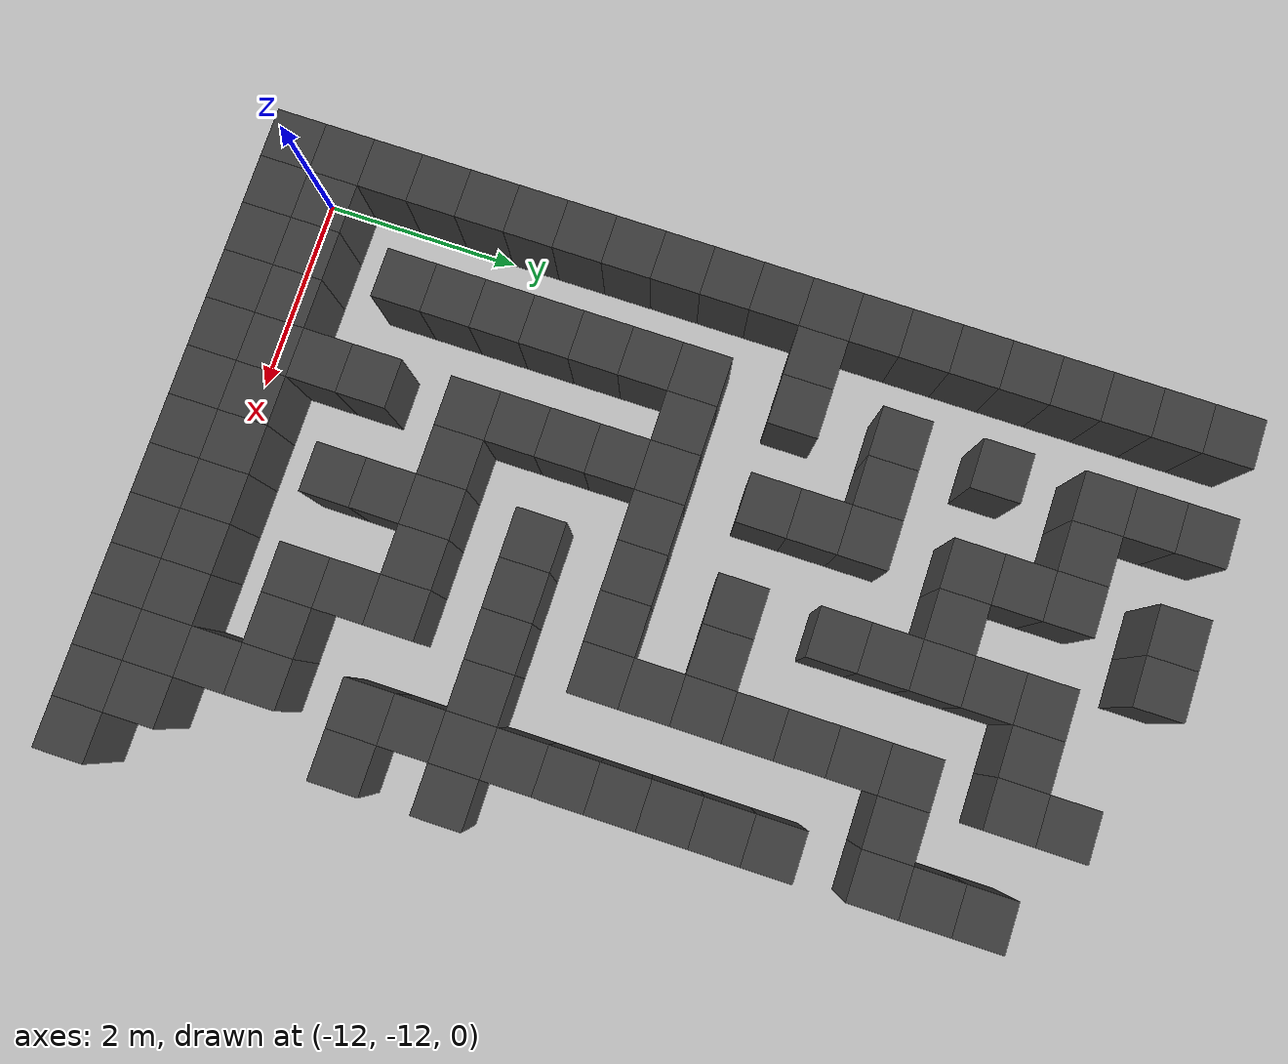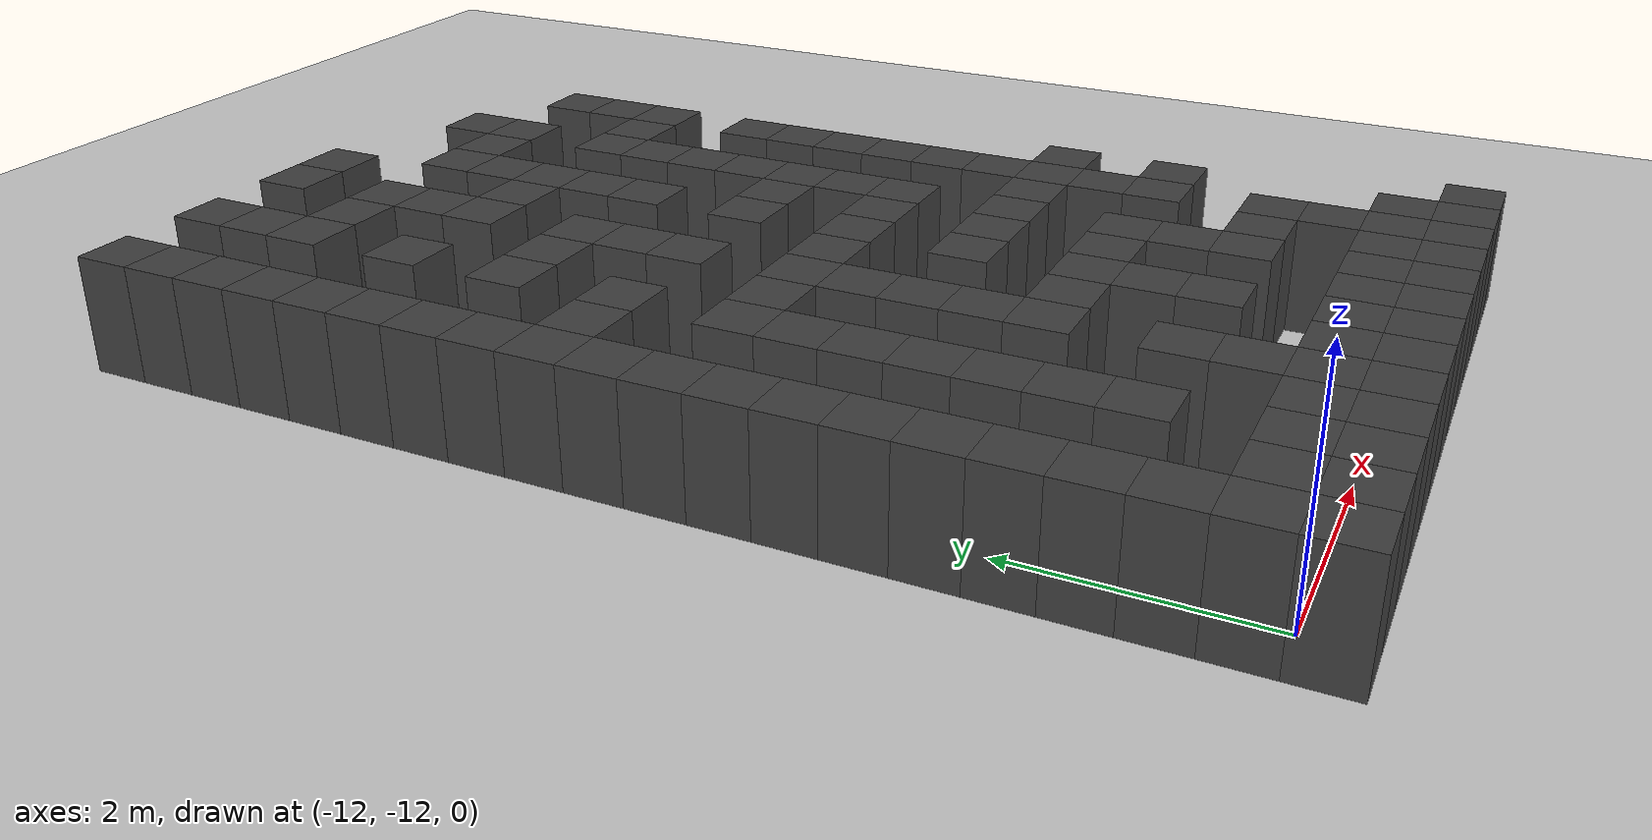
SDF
<sdf version="1.7">
 <world name="map_17503">
  <model name="ground_plane">
   <static>true</static>
   <link name="link">
    <collision name="collision">
     <geometry><plane><normal>0 0 1</normal><size>200 200</size></plane></geometry>
    </collision>
    <visual name="visual">
     <geometry><plane><normal>0 0 1</normal><size>200 200</size></plane></geometry>
     <material><ambient>0.8 0.8 0.8 1</ambient><diffuse>0.8 0.8 0.8 1</diffuse></material>
    </visual>
   </link>
  </model>
  <model name="maze_environment">
   <static>true</static>
   <link name="wall_743">
    <pose>-12.250 -2.750 0.500 0 0 0</pose>
    <collision name="col"><geometry><box><size>0.5 0.5 1.0</size></box></geometry></collision>
    <visual name="vis">
     <geometry><box><size>0.5 0.5 1.0</size></box></geometry>
     <material><ambient>0.15 0.15 0.15 1</ambient><diffuse>0.25 0.25 0.25 1</diffuse></material>
    </visual>
   </link>
   <link name="wall_744">
    <pose>-11.250 -2.750 0.500 0 0 0</pose>
    <collision name="col"><geometry><box><size>0.5 0.5 1.0</size></box></geometry></collision>
    <visual name="vis">
     <geometry><box><size>0.5 0.5 1.0</size></box></geometry>
     <material><ambient>0.15 0.15 0.15 1</ambient><diffuse>0.25 0.25 0.25 1</diffuse></material>
    </visual>
   </link>
   <link name="wall_745">
    <pose>-10.250 -2.750 0.500 0 0 0</pose>
    <collision name="col"><geometry><box><size>0.5 0.5 1.0</size></box></geometry></collision>
    <visual name="vis">
     <geometry><box><size>0.5 0.5 1.0</size></box></geometry>
     <material><ambient>0.15 0.15 0.15 1</ambient><diffuse>0.25 0.25 0.25 1</diffuse></material>
    </visual>
   </link>
   <link name="wall_746">
    <pose>-9.750 -2.750 0.500 0 0 0</pose>
    <collision name="col"><geometry><box><size>0.5 0.5 1.0</size></box></geometry></collision>
    <visual name="vis">
     <geometry><box><size>0.5 0.5 1.0</size></box></geometry>
     <material><ambient>0.15 0.15 0.15 1</ambient><diffuse>0.25 0.25 0.25 1</diffuse></material>
    </visual>
   </link>
   <link name="wall_774">
    <pose>-12.250 -3.250 0.500 0 0 0</pose>
    <collision name="col"><geometry><box><size>0.5 0.5 1.0</size></box></geometry></collision>
    <visual name="vis">
     <geometry><box><size>0.5 0.5 1.0</size></box></geometry>
     <material><ambient>0.15 0.15 0.15 1</ambient><diffuse>0.25 0.25 0.25 1</diffuse></material>
    </visual>
   </link>
   <link name="wall_775">
    <pose>-11.250 -3.250 0.500 0 0 0</pose>
    <collision name="col"><geometry><box><size>0.5 0.5 1.0</size></box></geometry></collision>
    <visual name="vis">
     <geometry><box><size>0.5 0.5 1.0</size></box></geometry>
     <material><ambient>0.15 0.15 0.15 1</ambient><diffuse>0.25 0.25 0.25 1</diffuse></material>
    </visual>
   </link>
   <link name="wall_776">
    <pose>-8.250 -3.250 0.500 0 0 0</pose>
    <collision name="col"><geometry><box><size>0.5 0.5 1.0</size></box></geometry></collision>
    <visual name="vis">
     <geometry><box><size>0.5 0.5 1.0</size></box></geometry>
     <material><ambient>0.15 0.15 0.15 1</ambient><diffuse>0.25 0.25 0.25 1</diffuse></material>
    </visual>
   </link>
   <link name="wall_790">
    <pose>-12.250 -3.750 0.500 0 0 0</pose>
    <collision name="col"><geometry><box><size>0.5 0.5 1.0</size></box></geometry></collision>
    <visual name="vis">
     <geometry><box><size>0.5 0.5 1.0</size></box></geometry>
     <material><ambient>0.15 0.15 0.15 1</ambient><diffuse>0.25 0.25 0.25 1</diffuse></material>
    </visual>
   </link>
   <link name="wall_791">
    <pose>-11.250 -3.750 0.500 0 0 0</pose>
    <collision name="col"><geometry><box><size>0.5 0.5 1.0</size></box></geometry></collision>
    <visual name="vis">
     <geometry><box><size>0.5 0.5 1.0</size></box></geometry>
     <material><ambient>0.15 0.15 0.15 1</ambient><diffuse>0.25 0.25 0.25 1</diffuse></material>
    </visual>
   </link>
   <link name="wall_792">
    <pose>-10.750 -3.750 0.500 0 0 0</pose>
    <collision name="col"><geometry><box><size>0.5 0.5 1.0</size></box></geometry></collision>
    <visual name="vis">
     <geometry><box><size>0.5 0.5 1.0</size></box></geometry>
     <material><ambient>0.15 0.15 0.15 1</ambient><diffuse>0.25 0.25 0.25 1</diffuse></material>
    </visual>
   </link>
   <link name="wall_793">
    <pose>-10.250 -3.750 0.500 0 0 0</pose>
    <collision name="col"><geometry><box><size>0.5 0.5 1.0</size></box></geometry></collision>
    <visual name="vis">
     <geometry><box><size>0.5 0.5 1.0</size></box></geometry>
     <material><ambient>0.15 0.15 0.15 1</ambient><diffuse>0.25 0.25 0.25 1</diffuse></material>
    </visual>
   </link>
   <link name="wall_794">
    <pose>-9.250 -3.750 0.500 0 0 0</pose>
    <collision name="col"><geometry><box><size>0.5 0.5 1.0</size></box></geometry></collision>
    <visual name="vis">
     <geometry><box><size>0.5 0.5 1.0</size></box></geometry>
     <material><ambient>0.15 0.15 0.15 1</ambient><diffuse>0.25 0.25 0.25 1</diffuse></material>
    </visual>
   </link>
   <link name="wall_795">
    <pose>-8.750 -3.750 0.500 0 0 0</pose>
    <collision name="col"><geometry><box><size>0.5 0.5 1.0</size></box></geometry></collision>
    <visual name="vis">
     <geometry><box><size>0.5 0.5 1.0</size></box></geometry>
     <material><ambient>0.15 0.15 0.15 1</ambient><diffuse>0.25 0.25 0.25 1</diffuse></material>
    </visual>
   </link>
   <link name="wall_796">
    <pose>-8.250 -3.750 0.500 0 0 0</pose>
    <collision name="col"><geometry><box><size>0.5 0.5 1.0</size></box></geometry></collision>
    <visual name="vis">
     <geometry><box><size>0.5 0.5 1.0</size></box></geometry>
     <material><ambient>0.15 0.15 0.15 1</ambient><diffuse>0.25 0.25 0.25 1</diffuse></material>
    </visual>
   </link>
   <link name="wall_797">
    <pose>-7.250 -3.750 0.500 0 0 0</pose>
    <collision name="col"><geometry><box><size>0.5 0.5 1.0</size></box></geometry></collision>
    <visual name="vis">
     <geometry><box><size>0.5 0.5 1.0</size></box></geometry>
     <material><ambient>0.15 0.15 0.15 1</ambient><diffuse>0.25 0.25 0.25 1</diffuse></material>
    </visual>
   </link>
   <link name="wall_825">
    <pose>-12.250 -4.250 0.500 0 0 0</pose>
    <collision name="col"><geometry><box><size>0.5 0.5 1.0</size></box></geometry></collision>
    <visual name="vis">
     <geometry><box><size>0.5 0.5 1.0</size></box></geometry>
     <material><ambient>0.15 0.15 0.15 1</ambient><diffuse>0.25 0.25 0.25 1</diffuse></material>
    </visual>
   </link>
   <link name="wall_826">
    <pose>-10.250 -4.250 0.500 0 0 0</pose>
    <collision name="col"><geometry><box><size>0.5 0.5 1.0</size></box></geometry></collision>
    <visual name="vis">
     <geometry><box><size>0.5 0.5 1.0</size></box></geometry>
     <material><ambient>0.15 0.15 0.15 1</ambient><diffuse>0.25 0.25 0.25 1</diffuse></material>
    </visual>
   </link>
   <link name="wall_827">
    <pose>-9.250 -4.250 0.500 0 0 0</pose>
    <collision name="col"><geometry><box><size>0.5 0.5 1.0</size></box></geometry></collision>
    <visual name="vis">
     <geometry><box><size>0.5 0.5 1.0</size></box></geometry>
     <material><ambient>0.15 0.15 0.15 1</ambient><diffuse>0.25 0.25 0.25 1</diffuse></material>
    </visual>
   </link>
   <link name="wall_828">
    <pose>-7.250 -4.250 0.500 0 0 0</pose>
    <collision name="col"><geometry><box><size>0.5 0.5 1.0</size></box></geometry></collision>
    <visual name="vis">
     <geometry><box><size>0.5 0.5 1.0</size></box></geometry>
     <material><ambient>0.15 0.15 0.15 1</ambient><diffuse>0.25 0.25 0.25 1</diffuse></material>
    </visual>
   </link>
   <link name="wall_842">
    <pose>-12.250 -4.750 0.500 0 0 0</pose>
    <collision name="col"><geometry><box><size>0.5 0.5 1.0</size></box></geometry></collision>
    <visual name="vis">
     <geometry><box><size>0.5 0.5 1.0</size></box></geometry>
     <material><ambient>0.15 0.15 0.15 1</ambient><diffuse>0.25 0.25 0.25 1</diffuse></material>
    </visual>
   </link>
   <link name="wall_843">
    <pose>-11.250 -4.750 0.500 0 0 0</pose>
    <collision name="col"><geometry><box><size>0.5 0.5 1.0</size></box></geometry></collision>
    <visual name="vis">
     <geometry><box><size>0.5 0.5 1.0</size></box></geometry>
     <material><ambient>0.15 0.15 0.15 1</ambient><diffuse>0.25 0.25 0.25 1</diffuse></material>
    </visual>
   </link>
   <link name="wall_844">
    <pose>-10.250 -4.750 0.500 0 0 0</pose>
    <collision name="col"><geometry><box><size>0.5 0.5 1.0</size></box></geometry></collision>
    <visual name="vis">
     <geometry><box><size>0.5 0.5 1.0</size></box></geometry>
     <material><ambient>0.15 0.15 0.15 1</ambient><diffuse>0.25 0.25 0.25 1</diffuse></material>
    </visual>
   </link>
   <link name="wall_845">
    <pose>-9.750 -4.750 0.500 0 0 0</pose>
    <collision name="col"><geometry><box><size>0.5 0.5 1.0</size></box></geometry></collision>
    <visual name="vis">
     <geometry><box><size>0.5 0.5 1.0</size></box></geometry>
     <material><ambient>0.15 0.15 0.15 1</ambient><diffuse>0.25 0.25 0.25 1</diffuse></material>
    </visual>
   </link>
   <link name="wall_846">
    <pose>-9.250 -4.750 0.500 0 0 0</pose>
    <collision name="col"><geometry><box><size>0.5 0.5 1.0</size></box></geometry></collision>
    <visual name="vis">
     <geometry><box><size>0.5 0.5 1.0</size></box></geometry>
     <material><ambient>0.15 0.15 0.15 1</ambient><diffuse>0.25 0.25 0.25 1</diffuse></material>
    </visual>
   </link>
   <link name="wall_847">
    <pose>-8.250 -4.750 0.500 0 0 0</pose>
    <collision name="col"><geometry><box><size>0.5 0.5 1.0</size></box></geometry></collision>
    <visual name="vis">
     <geometry><box><size>0.5 0.5 1.0</size></box></geometry>
     <material><ambient>0.15 0.15 0.15 1</ambient><diffuse>0.25 0.25 0.25 1</diffuse></material>
    </visual>
   </link>
   <link name="wall_848">
    <pose>-7.750 -4.750 0.500 0 0 0</pose>
    <collision name="col"><geometry><box><size>0.5 0.5 1.0</size></box></geometry></collision>
    <visual name="vis">
     <geometry><box><size>0.5 0.5 1.0</size></box></geometry>
     <material><ambient>0.15 0.15 0.15 1</ambient><diffuse>0.25 0.25 0.25 1</diffuse></material>
    </visual>
   </link>
   <link name="wall_849">
    <pose>-7.250 -4.750 0.500 0 0 0</pose>
    <collision name="col"><geometry><box><size>0.5 0.5 1.0</size></box></geometry></collision>
    <visual name="vis">
     <geometry><box><size>0.5 0.5 1.0</size></box></geometry>
     <material><ambient>0.15 0.15 0.15 1</ambient><diffuse>0.25 0.25 0.25 1</diffuse></material>
    </visual>
   </link>
   <link name="wall_878">
    <pose>-12.250 -5.250 0.500 0 0 0</pose>
    <collision name="col"><geometry><box><size>0.5 0.5 1.0</size></box></geometry></collision>
    <visual name="vis">
     <geometry><box><size>0.5 0.5 1.0</size></box></geometry>
     <material><ambient>0.15 0.15 0.15 1</ambient><diffuse>0.25 0.25 0.25 1</diffuse></material>
    </visual>
   </link>
   <link name="wall_879">
    <pose>-9.250 -5.250 0.500 0 0 0</pose>
    <collision name="col"><geometry><box><size>0.5 0.5 1.0</size></box></geometry></collision>
    <visual name="vis">
     <geometry><box><size>0.5 0.5 1.0</size></box></geometry>
     <material><ambient>0.15 0.15 0.15 1</ambient><diffuse>0.25 0.25 0.25 1</diffuse></material>
    </visual>
   </link>
   <link name="wall_880">
    <pose>-8.250 -5.250 0.500 0 0 0</pose>
    <collision name="col"><geometry><box><size>0.5 0.5 1.0</size></box></geometry></collision>
    <visual name="vis">
     <geometry><box><size>0.5 0.5 1.0</size></box></geometry>
     <material><ambient>0.15 0.15 0.15 1</ambient><diffuse>0.25 0.25 0.25 1</diffuse></material>
    </visual>
   </link>
   <link name="wall_893">
    <pose>-12.250 -5.750 0.500 0 0 0</pose>
    <collision name="col"><geometry><box><size>0.5 0.5 1.0</size></box></geometry></collision>
    <visual name="vis">
     <geometry><box><size>0.5 0.5 1.0</size></box></geometry>
     <material><ambient>0.15 0.15 0.15 1</ambient><diffuse>0.25 0.25 0.25 1</diffuse></material>
    </visual>
   </link>
   <link name="wall_894">
    <pose>-11.250 -5.750 0.500 0 0 0</pose>
    <collision name="col"><geometry><box><size>0.5 0.5 1.0</size></box></geometry></collision>
    <visual name="vis">
     <geometry><box><size>0.5 0.5 1.0</size></box></geometry>
     <material><ambient>0.15 0.15 0.15 1</ambient><diffuse>0.25 0.25 0.25 1</diffuse></material>
    </visual>
   </link>
   <link name="wall_895">
    <pose>-10.750 -5.750 0.500 0 0 0</pose>
    <collision name="col"><geometry><box><size>0.5 0.5 1.0</size></box></geometry></collision>
    <visual name="vis">
     <geometry><box><size>0.5 0.5 1.0</size></box></geometry>
     <material><ambient>0.15 0.15 0.15 1</ambient><diffuse>0.25 0.25 0.25 1</diffuse></material>
    </visual>
   </link>
   <link name="wall_896">
    <pose>-10.250 -5.750 0.500 0 0 0</pose>
    <collision name="col"><geometry><box><size>0.5 0.5 1.0</size></box></geometry></collision>
    <visual name="vis">
     <geometry><box><size>0.5 0.5 1.0</size></box></geometry>
     <material><ambient>0.15 0.15 0.15 1</ambient><diffuse>0.25 0.25 0.25 1</diffuse></material>
    </visual>
   </link>
   <link name="wall_897">
    <pose>-9.250 -5.750 0.500 0 0 0</pose>
    <collision name="col"><geometry><box><size>0.5 0.5 1.0</size></box></geometry></collision>
    <visual name="vis">
     <geometry><box><size>0.5 0.5 1.0</size></box></geometry>
     <material><ambient>0.15 0.15 0.15 1</ambient><diffuse>0.25 0.25 0.25 1</diffuse></material>
    </visual>
   </link>
   <link name="wall_898">
    <pose>-8.250 -5.750 0.500 0 0 0</pose>
    <collision name="col"><geometry><box><size>0.5 0.5 1.0</size></box></geometry></collision>
    <visual name="vis">
     <geometry><box><size>0.5 0.5 1.0</size></box></geometry>
     <material><ambient>0.15 0.15 0.15 1</ambient><diffuse>0.25 0.25 0.25 1</diffuse></material>
    </visual>
   </link>
   <link name="wall_899">
    <pose>-7.250 -5.750 0.500 0 0 0</pose>
    <collision name="col"><geometry><box><size>0.5 0.5 1.0</size></box></geometry></collision>
    <visual name="vis">
     <geometry><box><size>0.5 0.5 1.0</size></box></geometry>
     <material><ambient>0.15 0.15 0.15 1</ambient><diffuse>0.25 0.25 0.25 1</diffuse></material>
    </visual>
   </link>
   <link name="wall_923">
    <pose>-12.250 -6.250 0.500 0 0 0</pose>
    <collision name="col"><geometry><box><size>0.5 0.5 1.0</size></box></geometry></collision>
    <visual name="vis">
     <geometry><box><size>0.5 0.5 1.0</size></box></geometry>
     <material><ambient>0.15 0.15 0.15 1</ambient><diffuse>0.25 0.25 0.25 1</diffuse></material>
    </visual>
   </link>
   <link name="wall_924">
    <pose>-10.250 -6.250 0.500 0 0 0</pose>
    <collision name="col"><geometry><box><size>0.5 0.5 1.0</size></box></geometry></collision>
    <visual name="vis">
     <geometry><box><size>0.5 0.5 1.0</size></box></geometry>
     <material><ambient>0.15 0.15 0.15 1</ambient><diffuse>0.25 0.25 0.25 1</diffuse></material>
    </visual>
   </link>
   <link name="wall_925">
    <pose>-8.250 -6.250 0.500 0 0 0</pose>
    <collision name="col"><geometry><box><size>0.5 0.5 1.0</size></box></geometry></collision>
    <visual name="vis">
     <geometry><box><size>0.5 0.5 1.0</size></box></geometry>
     <material><ambient>0.15 0.15 0.15 1</ambient><diffuse>0.25 0.25 0.25 1</diffuse></material>
    </visual>
   </link>
   <link name="wall_926">
    <pose>-7.250 -6.250 0.500 0 0 0</pose>
    <collision name="col"><geometry><box><size>0.5 0.5 1.0</size></box></geometry></collision>
    <visual name="vis">
     <geometry><box><size>0.5 0.5 1.0</size></box></geometry>
     <material><ambient>0.15 0.15 0.15 1</ambient><diffuse>0.25 0.25 0.25 1</diffuse></material>
    </visual>
   </link>
   <link name="wall_936">
    <pose>-12.250 -6.750 0.500 0 0 0</pose>
    <collision name="col"><geometry><box><size>0.5 0.5 1.0</size></box></geometry></collision>
    <visual name="vis">
     <geometry><box><size>0.5 0.5 1.0</size></box></geometry>
     <material><ambient>0.15 0.15 0.15 1</ambient><diffuse>0.25 0.25 0.25 1</diffuse></material>
    </visual>
   </link>
   <link name="wall_937">
    <pose>-11.750 -6.750 0.500 0 0 0</pose>
    <collision name="col"><geometry><box><size>0.5 0.5 1.0</size></box></geometry></collision>
    <visual name="vis">
     <geometry><box><size>0.5 0.5 1.0</size></box></geometry>
     <material><ambient>0.15 0.15 0.15 1</ambient><diffuse>0.25 0.25 0.25 1</diffuse></material>
    </visual>
   </link>
   <link name="wall_938">
    <pose>-11.250 -6.750 0.500 0 0 0</pose>
    <collision name="col"><geometry><box><size>0.5 0.5 1.0</size></box></geometry></collision>
    <visual name="vis">
     <geometry><box><size>0.5 0.5 1.0</size></box></geometry>
     <material><ambient>0.15 0.15 0.15 1</ambient><diffuse>0.25 0.25 0.25 1</diffuse></material>
    </visual>
   </link>
   <link name="wall_939">
    <pose>-10.250 -6.750 0.500 0 0 0</pose>
    <collision name="col"><geometry><box><size>0.5 0.5 1.0</size></box></geometry></collision>
    <visual name="vis">
     <geometry><box><size>0.5 0.5 1.0</size></box></geometry>
     <material><ambient>0.15 0.15 0.15 1</ambient><diffuse>0.25 0.25 0.25 1</diffuse></material>
    </visual>
   </link>
   <link name="wall_940">
    <pose>-9.250 -6.750 0.500 0 0 0</pose>
    <collision name="col"><geometry><box><size>0.5 0.5 1.0</size></box></geometry></collision>
    <visual name="vis">
     <geometry><box><size>0.5 0.5 1.0</size></box></geometry>
     <material><ambient>0.15 0.15 0.15 1</ambient><diffuse>0.25 0.25 0.25 1</diffuse></material>
    </visual>
   </link>
   <link name="wall_941">
    <pose>-8.750 -6.750 0.500 0 0 0</pose>
    <collision name="col"><geometry><box><size>0.5 0.5 1.0</size></box></geometry></collision>
    <visual name="vis">
     <geometry><box><size>0.5 0.5 1.0</size></box></geometry>
     <material><ambient>0.15 0.15 0.15 1</ambient><diffuse>0.25 0.25 0.25 1</diffuse></material>
    </visual>
   </link>
   <link name="wall_942">
    <pose>-8.250 -6.750 0.500 0 0 0</pose>
    <collision name="col"><geometry><box><size>0.5 0.5 1.0</size></box></geometry></collision>
    <visual name="vis">
     <geometry><box><size>0.5 0.5 1.0</size></box></geometry>
     <material><ambient>0.15 0.15 0.15 1</ambient><diffuse>0.25 0.25 0.25 1</diffuse></material>
    </visual>
   </link>
   <link name="wall_943">
    <pose>-7.250 -6.750 0.500 0 0 0</pose>
    <collision name="col"><geometry><box><size>0.5 0.5 1.0</size></box></geometry></collision>
    <visual name="vis">
     <geometry><box><size>0.5 0.5 1.0</size></box></geometry>
     <material><ambient>0.15 0.15 0.15 1</ambient><diffuse>0.25 0.25 0.25 1</diffuse></material>
    </visual>
   </link>
   <link name="wall_973">
    <pose>-12.250 -7.250 0.500 0 0 0</pose>
    <collision name="col"><geometry><box><size>0.5 0.5 1.0</size></box></geometry></collision>
    <visual name="vis">
     <geometry><box><size>0.5 0.5 1.0</size></box></geometry>
     <material><ambient>0.15 0.15 0.15 1</ambient><diffuse>0.25 0.25 0.25 1</diffuse></material>
    </visual>
   </link>
   <link name="wall_974">
    <pose>-8.250 -7.250 0.500 0 0 0</pose>
    <collision name="col"><geometry><box><size>0.5 0.5 1.0</size></box></geometry></collision>
    <visual name="vis">
     <geometry><box><size>0.5 0.5 1.0</size></box></geometry>
     <material><ambient>0.15 0.15 0.15 1</ambient><diffuse>0.25 0.25 0.25 1</diffuse></material>
    </visual>
   </link>
   <link name="wall_975">
    <pose>-7.250 -7.250 0.500 0 0 0</pose>
    <collision name="col"><geometry><box><size>0.5 0.5 1.0</size></box></geometry></collision>
    <visual name="vis">
     <geometry><box><size>0.5 0.5 1.0</size></box></geometry>
     <material><ambient>0.15 0.15 0.15 1</ambient><diffuse>0.25 0.25 0.25 1</diffuse></material>
    </visual>
   </link>
   <link name="wall_986">
    <pose>-12.250 -7.750 0.500 0 0 0</pose>
    <collision name="col"><geometry><box><size>0.5 0.5 1.0</size></box></geometry></collision>
    <visual name="vis">
     <geometry><box><size>0.5 0.5 1.0</size></box></geometry>
     <material><ambient>0.15 0.15 0.15 1</ambient><diffuse>0.25 0.25 0.25 1</diffuse></material>
    </visual>
   </link>
   <link name="wall_987">
    <pose>-11.250 -7.750 0.500 0 0 0</pose>
    <collision name="col"><geometry><box><size>0.5 0.5 1.0</size></box></geometry></collision>
    <visual name="vis">
     <geometry><box><size>0.5 0.5 1.0</size></box></geometry>
     <material><ambient>0.15 0.15 0.15 1</ambient><diffuse>0.25 0.25 0.25 1</diffuse></material>
    </visual>
   </link>
   <link name="wall_988">
    <pose>-10.750 -7.750 0.500 0 0 0</pose>
    <collision name="col"><geometry><box><size>0.5 0.5 1.0</size></box></geometry></collision>
    <visual name="vis">
     <geometry><box><size>0.5 0.5 1.0</size></box></geometry>
     <material><ambient>0.15 0.15 0.15 1</ambient><diffuse>0.25 0.25 0.25 1</diffuse></material>
    </visual>
   </link>
   <link name="wall_989">
    <pose>-10.250 -7.750 0.500 0 0 0</pose>
    <collision name="col"><geometry><box><size>0.5 0.5 1.0</size></box></geometry></collision>
    <visual name="vis">
     <geometry><box><size>0.5 0.5 1.0</size></box></geometry>
     <material><ambient>0.15 0.15 0.15 1</ambient><diffuse>0.25 0.25 0.25 1</diffuse></material>
    </visual>
   </link>
   <link name="wall_990">
    <pose>-9.750 -7.750 0.500 0 0 0</pose>
    <collision name="col"><geometry><box><size>0.5 0.5 1.0</size></box></geometry></collision>
    <visual name="vis">
     <geometry><box><size>0.5 0.5 1.0</size></box></geometry>
     <material><ambient>0.15 0.15 0.15 1</ambient><diffuse>0.25 0.25 0.25 1</diffuse></material>
    </visual>
   </link>
   <link name="wall_991">
    <pose>-9.250 -7.750 0.500 0 0 0</pose>
    <collision name="col"><geometry><box><size>0.5 0.5 1.0</size></box></geometry></collision>
    <visual name="vis">
     <geometry><box><size>0.5 0.5 1.0</size></box></geometry>
     <material><ambient>0.15 0.15 0.15 1</ambient><diffuse>0.25 0.25 0.25 1</diffuse></material>
    </visual>
   </link>
   <link name="wall_992">
    <pose>-8.750 -7.750 0.500 0 0 0</pose>
    <collision name="col"><geometry><box><size>0.5 0.5 1.0</size></box></geometry></collision>
    <visual name="vis">
     <geometry><box><size>0.5 0.5 1.0</size></box></geometry>
     <material><ambient>0.15 0.15 0.15 1</ambient><diffuse>0.25 0.25 0.25 1</diffuse></material>
    </visual>
   </link>
   <link name="wall_993">
    <pose>-8.250 -7.750 0.500 0 0 0</pose>
    <collision name="col"><geometry><box><size>0.5 0.5 1.0</size></box></geometry></collision>
    <visual name="vis">
     <geometry><box><size>0.5 0.5 1.0</size></box></geometry>
     <material><ambient>0.15 0.15 0.15 1</ambient><diffuse>0.25 0.25 0.25 1</diffuse></material>
    </visual>
   </link>
   <link name="wall_994">
    <pose>-7.250 -7.750 0.500 0 0 0</pose>
    <collision name="col"><geometry><box><size>0.5 0.5 1.0</size></box></geometry></collision>
    <visual name="vis">
     <geometry><box><size>0.5 0.5 1.0</size></box></geometry>
     <material><ambient>0.15 0.15 0.15 1</ambient><diffuse>0.25 0.25 0.25 1</diffuse></material>
    </visual>
   </link>
   <link name="wall_1018">
    <pose>-12.250 -8.250 0.500 0 0 0</pose>
    <collision name="col"><geometry><box><size>0.5 0.5 1.0</size></box></geometry></collision>
    <visual name="vis">
     <geometry><box><size>0.5 0.5 1.0</size></box></geometry>
     <material><ambient>0.15 0.15 0.15 1</ambient><diffuse>0.25 0.25 0.25 1</diffuse></material>
    </visual>
   </link>
   <link name="wall_1019">
    <pose>-11.250 -8.250 0.500 0 0 0</pose>
    <collision name="col"><geometry><box><size>0.5 0.5 1.0</size></box></geometry></collision>
    <visual name="vis">
     <geometry><box><size>0.5 0.5 1.0</size></box></geometry>
     <material><ambient>0.15 0.15 0.15 1</ambient><diffuse>0.25 0.25 0.25 1</diffuse></material>
    </visual>
   </link>
   <link name="wall_1020">
    <pose>-10.250 -8.250 0.500 0 0 0</pose>
    <collision name="col"><geometry><box><size>0.5 0.5 1.0</size></box></geometry></collision>
    <visual name="vis">
     <geometry><box><size>0.5 0.5 1.0</size></box></geometry>
     <material><ambient>0.15 0.15 0.15 1</ambient><diffuse>0.25 0.25 0.25 1</diffuse></material>
    </visual>
   </link>
   <link name="wall_1021">
    <pose>-7.250 -8.250 0.500 0 0 0</pose>
    <collision name="col"><geometry><box><size>0.5 0.5 1.0</size></box></geometry></collision>
    <visual name="vis">
     <geometry><box><size>0.5 0.5 1.0</size></box></geometry>
     <material><ambient>0.15 0.15 0.15 1</ambient><diffuse>0.25 0.25 0.25 1</diffuse></material>
    </visual>
   </link>
   <link name="wall_1036">
    <pose>-12.250 -8.750 0.500 0 0 0</pose>
    <collision name="col"><geometry><box><size>0.5 0.5 1.0</size></box></geometry></collision>
    <visual name="vis">
     <geometry><box><size>0.5 0.5 1.0</size></box></geometry>
     <material><ambient>0.15 0.15 0.15 1</ambient><diffuse>0.25 0.25 0.25 1</diffuse></material>
    </visual>
   </link>
   <link name="wall_1037">
    <pose>-11.250 -8.750 0.500 0 0 0</pose>
    <collision name="col"><geometry><box><size>0.5 0.5 1.0</size></box></geometry></collision>
    <visual name="vis">
     <geometry><box><size>0.5 0.5 1.0</size></box></geometry>
     <material><ambient>0.15 0.15 0.15 1</ambient><diffuse>0.25 0.25 0.25 1</diffuse></material>
    </visual>
   </link>
   <link name="wall_1038">
    <pose>-10.250 -8.750 0.500 0 0 0</pose>
    <collision name="col"><geometry><box><size>0.5 0.5 1.0</size></box></geometry></collision>
    <visual name="vis">
     <geometry><box><size>0.5 0.5 1.0</size></box></geometry>
     <material><ambient>0.15 0.15 0.15 1</ambient><diffuse>0.25 0.25 0.25 1</diffuse></material>
    </visual>
   </link>
   <link name="wall_1039">
    <pose>-9.250 -8.750 0.500 0 0 0</pose>
    <collision name="col"><geometry><box><size>0.5 0.5 1.0</size></box></geometry></collision>
    <visual name="vis">
     <geometry><box><size>0.5 0.5 1.0</size></box></geometry>
     <material><ambient>0.15 0.15 0.15 1</ambient><diffuse>0.25 0.25 0.25 1</diffuse></material>
    </visual>
   </link>
   <link name="wall_1040">
    <pose>-8.750 -8.750 0.500 0 0 0</pose>
    <collision name="col"><geometry><box><size>0.5 0.5 1.0</size></box></geometry></collision>
    <visual name="vis">
     <geometry><box><size>0.5 0.5 1.0</size></box></geometry>
     <material><ambient>0.15 0.15 0.15 1</ambient><diffuse>0.25 0.25 0.25 1</diffuse></material>
    </visual>
   </link>
   <link name="wall_1041">
    <pose>-8.250 -8.750 0.500 0 0 0</pose>
    <collision name="col"><geometry><box><size>0.5 0.5 1.0</size></box></geometry></collision>
    <visual name="vis">
     <geometry><box><size>0.5 0.5 1.0</size></box></geometry>
     <material><ambient>0.15 0.15 0.15 1</ambient><diffuse>0.25 0.25 0.25 1</diffuse></material>
    </visual>
   </link>
   <link name="wall_1042">
    <pose>-7.750 -8.750 0.500 0 0 0</pose>
    <collision name="col"><geometry><box><size>0.5 0.5 1.0</size></box></geometry></collision>
    <visual name="vis">
     <geometry><box><size>0.5 0.5 1.0</size></box></geometry>
     <material><ambient>0.15 0.15 0.15 1</ambient><diffuse>0.25 0.25 0.25 1</diffuse></material>
    </visual>
   </link>
   <link name="wall_1043">
    <pose>-7.250 -8.750 0.500 0 0 0</pose>
    <collision name="col"><geometry><box><size>0.5 0.5 1.0</size></box></geometry></collision>
    <visual name="vis">
     <geometry><box><size>0.5 0.5 1.0</size></box></geometry>
     <material><ambient>0.15 0.15 0.15 1</ambient><diffuse>0.25 0.25 0.25 1</diffuse></material>
    </visual>
   </link>
   <link name="wall_1044">
    <pose>-6.750 -8.750 0.500 0 0 0</pose>
    <collision name="col"><geometry><box><size>0.5 0.5 1.0</size></box></geometry></collision>
    <visual name="vis">
     <geometry><box><size>0.5 0.5 1.0</size></box></geometry>
     <material><ambient>0.15 0.15 0.15 1</ambient><diffuse>0.25 0.25 0.25 1</diffuse></material>
    </visual>
   </link>
   <link name="wall_1069">
    <pose>-12.250 -9.250 0.500 0 0 0</pose>
    <collision name="col"><geometry><box><size>0.5 0.5 1.0</size></box></geometry></collision>
    <visual name="vis">
     <geometry><box><size>0.5 0.5 1.0</size></box></geometry>
     <material><ambient>0.15 0.15 0.15 1</ambient><diffuse>0.25 0.25 0.25 1</diffuse></material>
    </visual>
   </link>
   <link name="wall_1070">
    <pose>-11.250 -9.250 0.500 0 0 0</pose>
    <collision name="col"><geometry><box><size>0.5 0.5 1.0</size></box></geometry></collision>
    <visual name="vis">
     <geometry><box><size>0.5 0.5 1.0</size></box></geometry>
     <material><ambient>0.15 0.15 0.15 1</ambient><diffuse>0.25 0.25 0.25 1</diffuse></material>
    </visual>
   </link>
   <link name="wall_1071">
    <pose>-10.250 -9.250 0.500 0 0 0</pose>
    <collision name="col"><geometry><box><size>0.5 0.5 1.0</size></box></geometry></collision>
    <visual name="vis">
     <geometry><box><size>0.5 0.5 1.0</size></box></geometry>
     <material><ambient>0.15 0.15 0.15 1</ambient><diffuse>0.25 0.25 0.25 1</diffuse></material>
    </visual>
   </link>
   <link name="wall_1072">
    <pose>-7.250 -9.250 0.500 0 0 0</pose>
    <collision name="col"><geometry><box><size>0.5 0.5 1.0</size></box></geometry></collision>
    <visual name="vis">
     <geometry><box><size>0.5 0.5 1.0</size></box></geometry>
     <material><ambient>0.15 0.15 0.15 1</ambient><diffuse>0.25 0.25 0.25 1</diffuse></material>
    </visual>
   </link>
   <link name="wall_1082">
    <pose>-12.250 -9.750 0.500 0 0 0</pose>
    <collision name="col"><geometry><box><size>0.5 0.5 1.0</size></box></geometry></collision>
    <visual name="vis">
     <geometry><box><size>0.5 0.5 1.0</size></box></geometry>
     <material><ambient>0.15 0.15 0.15 1</ambient><diffuse>0.25 0.25 0.25 1</diffuse></material>
    </visual>
   </link>
   <link name="wall_1083">
    <pose>-11.250 -9.750 0.500 0 0 0</pose>
    <collision name="col"><geometry><box><size>0.5 0.5 1.0</size></box></geometry></collision>
    <visual name="vis">
     <geometry><box><size>0.5 0.5 1.0</size></box></geometry>
     <material><ambient>0.15 0.15 0.15 1</ambient><diffuse>0.25 0.25 0.25 1</diffuse></material>
    </visual>
   </link>
   <link name="wall_1084">
    <pose>-10.250 -9.750 0.500 0 0 0</pose>
    <collision name="col"><geometry><box><size>0.5 0.5 1.0</size></box></geometry></collision>
    <visual name="vis">
     <geometry><box><size>0.5 0.5 1.0</size></box></geometry>
     <material><ambient>0.15 0.15 0.15 1</ambient><diffuse>0.25 0.25 0.25 1</diffuse></material>
    </visual>
   </link>
   <link name="wall_1085">
    <pose>-9.750 -9.750 0.500 0 0 0</pose>
    <collision name="col"><geometry><box><size>0.5 0.5 1.0</size></box></geometry></collision>
    <visual name="vis">
     <geometry><box><size>0.5 0.5 1.0</size></box></geometry>
     <material><ambient>0.15 0.15 0.15 1</ambient><diffuse>0.25 0.25 0.25 1</diffuse></material>
    </visual>
   </link>
   <link name="wall_1086">
    <pose>-9.250 -9.750 0.500 0 0 0</pose>
    <collision name="col"><geometry><box><size>0.5 0.5 1.0</size></box></geometry></collision>
    <visual name="vis">
     <geometry><box><size>0.5 0.5 1.0</size></box></geometry>
     <material><ambient>0.15 0.15 0.15 1</ambient><diffuse>0.25 0.25 0.25 1</diffuse></material>
    </visual>
   </link>
   <link name="wall_1087">
    <pose>-8.750 -9.750 0.500 0 0 0</pose>
    <collision name="col"><geometry><box><size>0.5 0.5 1.0</size></box></geometry></collision>
    <visual name="vis">
     <geometry><box><size>0.5 0.5 1.0</size></box></geometry>
     <material><ambient>0.15 0.15 0.15 1</ambient><diffuse>0.25 0.25 0.25 1</diffuse></material>
    </visual>
   </link>
   <link name="wall_1088">
    <pose>-8.250 -9.750 0.500 0 0 0</pose>
    <collision name="col"><geometry><box><size>0.5 0.5 1.0</size></box></geometry></collision>
    <visual name="vis">
     <geometry><box><size>0.5 0.5 1.0</size></box></geometry>
     <material><ambient>0.15 0.15 0.15 1</ambient><diffuse>0.25 0.25 0.25 1</diffuse></material>
    </visual>
   </link>
   <link name="wall_1089">
    <pose>-7.250 -9.750 0.500 0 0 0</pose>
    <collision name="col"><geometry><box><size>0.5 0.5 1.0</size></box></geometry></collision>
    <visual name="vis">
     <geometry><box><size>0.5 0.5 1.0</size></box></geometry>
     <material><ambient>0.15 0.15 0.15 1</ambient><diffuse>0.25 0.25 0.25 1</diffuse></material>
    </visual>
   </link>
   <link name="wall_1090">
    <pose>-6.750 -9.750 0.500 0 0 0</pose>
    <collision name="col"><geometry><box><size>0.5 0.5 1.0</size></box></geometry></collision>
    <visual name="vis">
     <geometry><box><size>0.5 0.5 1.0</size></box></geometry>
     <material><ambient>0.15 0.15 0.15 1</ambient><diffuse>0.25 0.25 0.25 1</diffuse></material>
    </visual>
   </link>
   <link name="wall_1117">
    <pose>-12.250 -10.250 0.500 0 0 0</pose>
    <collision name="col"><geometry><box><size>0.5 0.5 1.0</size></box></geometry></collision>
    <visual name="vis">
     <geometry><box><size>0.5 0.5 1.0</size></box></geometry>
     <material><ambient>0.15 0.15 0.15 1</ambient><diffuse>0.25 0.25 0.25 1</diffuse></material>
    </visual>
   </link>
   <link name="wall_1118">
    <pose>-11.250 -10.250 0.500 0 0 0</pose>
    <collision name="col"><geometry><box><size>0.5 0.5 1.0</size></box></geometry></collision>
    <visual name="vis">
     <geometry><box><size>0.5 0.5 1.0</size></box></geometry>
     <material><ambient>0.15 0.15 0.15 1</ambient><diffuse>0.25 0.25 0.25 1</diffuse></material>
    </visual>
   </link>
   <link name="wall_1119">
    <pose>-9.250 -10.250 0.500 0 0 0</pose>
    <collision name="col"><geometry><box><size>0.5 0.5 1.0</size></box></geometry></collision>
    <visual name="vis">
     <geometry><box><size>0.5 0.5 1.0</size></box></geometry>
     <material><ambient>0.15 0.15 0.15 1</ambient><diffuse>0.25 0.25 0.25 1</diffuse></material>
    </visual>
   </link>
   <link name="wall_1120">
    <pose>-8.250 -10.250 0.500 0 0 0</pose>
    <collision name="col"><geometry><box><size>0.5 0.5 1.0</size></box></geometry></collision>
    <visual name="vis">
     <geometry><box><size>0.5 0.5 1.0</size></box></geometry>
     <material><ambient>0.15 0.15 0.15 1</ambient><diffuse>0.25 0.25 0.25 1</diffuse></material>
    </visual>
   </link>
   <link name="wall_1131">
    <pose>-12.250 -10.750 0.500 0 0 0</pose>
    <collision name="col"><geometry><box><size>0.5 0.5 1.0</size></box></geometry></collision>
    <visual name="vis">
     <geometry><box><size>0.5 0.5 1.0</size></box></geometry>
     <material><ambient>0.15 0.15 0.15 1</ambient><diffuse>0.25 0.25 0.25 1</diffuse></material>
    </visual>
   </link>
   <link name="wall_1132">
    <pose>-11.250 -10.750 0.500 0 0 0</pose>
    <collision name="col"><geometry><box><size>0.5 0.5 1.0</size></box></geometry></collision>
    <visual name="vis">
     <geometry><box><size>0.5 0.5 1.0</size></box></geometry>
     <material><ambient>0.15 0.15 0.15 1</ambient><diffuse>0.25 0.25 0.25 1</diffuse></material>
    </visual>
   </link>
   <link name="wall_1133">
    <pose>-10.250 -10.750 0.500 0 0 0</pose>
    <collision name="col"><geometry><box><size>0.5 0.5 1.0</size></box></geometry></collision>
    <visual name="vis">
     <geometry><box><size>0.5 0.5 1.0</size></box></geometry>
     <material><ambient>0.15 0.15 0.15 1</ambient><diffuse>0.25 0.25 0.25 1</diffuse></material>
    </visual>
   </link>
   <link name="wall_1134">
    <pose>-9.250 -10.750 0.500 0 0 0</pose>
    <collision name="col"><geometry><box><size>0.5 0.5 1.0</size></box></geometry></collision>
    <visual name="vis">
     <geometry><box><size>0.5 0.5 1.0</size></box></geometry>
     <material><ambient>0.15 0.15 0.15 1</ambient><diffuse>0.25 0.25 0.25 1</diffuse></material>
    </visual>
   </link>
   <link name="wall_1135">
    <pose>-8.250 -10.750 0.500 0 0 0</pose>
    <collision name="col"><geometry><box><size>0.5 0.5 1.0</size></box></geometry></collision>
    <visual name="vis">
     <geometry><box><size>0.5 0.5 1.0</size></box></geometry>
     <material><ambient>0.15 0.15 0.15 1</ambient><diffuse>0.25 0.25 0.25 1</diffuse></material>
    </visual>
   </link>
   <link name="wall_1136">
    <pose>-7.750 -10.750 0.500 0 0 0</pose>
    <collision name="col"><geometry><box><size>0.5 0.5 1.0</size></box></geometry></collision>
    <visual name="vis">
     <geometry><box><size>0.5 0.5 1.0</size></box></geometry>
     <material><ambient>0.15 0.15 0.15 1</ambient><diffuse>0.25 0.25 0.25 1</diffuse></material>
    </visual>
   </link>
   <link name="wall_1137">
    <pose>-7.250 -10.750 0.500 0 0 0</pose>
    <collision name="col"><geometry><box><size>0.5 0.5 1.0</size></box></geometry></collision>
    <visual name="vis">
     <geometry><box><size>0.5 0.5 1.0</size></box></geometry>
     <material><ambient>0.15 0.15 0.15 1</ambient><diffuse>0.25 0.25 0.25 1</diffuse></material>
    </visual>
   </link>
   <link name="wall_1164">
    <pose>-12.250 -11.250 0.500 0 0 0</pose>
    <collision name="col"><geometry><box><size>0.5 0.5 1.0</size></box></geometry></collision>
    <visual name="vis">
     <geometry><box><size>0.5 0.5 1.0</size></box></geometry>
     <material><ambient>0.15 0.15 0.15 1</ambient><diffuse>0.25 0.25 0.25 1</diffuse></material>
    </visual>
   </link>
   <link name="wall_1165">
    <pose>-10.250 -11.250 0.500 0 0 0</pose>
    <collision name="col"><geometry><box><size>0.5 0.5 1.0</size></box></geometry></collision>
    <visual name="vis">
     <geometry><box><size>0.5 0.5 1.0</size></box></geometry>
     <material><ambient>0.15 0.15 0.15 1</ambient><diffuse>0.25 0.25 0.25 1</diffuse></material>
    </visual>
   </link>
   <link name="wall_1166">
    <pose>-7.250 -11.250 0.500 0 0 0</pose>
    <collision name="col"><geometry><box><size>0.5 0.5 1.0</size></box></geometry></collision>
    <visual name="vis">
     <geometry><box><size>0.5 0.5 1.0</size></box></geometry>
     <material><ambient>0.15 0.15 0.15 1</ambient><diffuse>0.25 0.25 0.25 1</diffuse></material>
    </visual>
   </link>
   <link name="wall_1172">
    <pose>-12.250 -11.750 0.500 0 0 0</pose>
    <collision name="col"><geometry><box><size>0.5 0.5 1.0</size></box></geometry></collision>
    <visual name="vis">
     <geometry><box><size>0.5 0.5 1.0</size></box></geometry>
     <material><ambient>0.15 0.15 0.15 1</ambient><diffuse>0.25 0.25 0.25 1</diffuse></material>
    </visual>
   </link>
   <link name="wall_1173">
    <pose>-11.750 -11.750 0.500 0 0 0</pose>
    <collision name="col"><geometry><box><size>0.5 0.5 1.0</size></box></geometry></collision>
    <visual name="vis">
     <geometry><box><size>0.5 0.5 1.0</size></box></geometry>
     <material><ambient>0.15 0.15 0.15 1</ambient><diffuse>0.25 0.25 0.25 1</diffuse></material>
    </visual>
   </link>
   <link name="wall_1174">
    <pose>-11.250 -11.750 0.500 0 0 0</pose>
    <collision name="col"><geometry><box><size>0.5 0.5 1.0</size></box></geometry></collision>
    <visual name="vis">
     <geometry><box><size>0.5 0.5 1.0</size></box></geometry>
     <material><ambient>0.15 0.15 0.15 1</ambient><diffuse>0.25 0.25 0.25 1</diffuse></material>
    </visual>
   </link>
   <link name="wall_1175">
    <pose>-10.750 -11.750 0.500 0 0 0</pose>
    <collision name="col"><geometry><box><size>0.5 0.5 1.0</size></box></geometry></collision>
    <visual name="vis">
     <geometry><box><size>0.5 0.5 1.0</size></box></geometry>
     <material><ambient>0.15 0.15 0.15 1</ambient><diffuse>0.25 0.25 0.25 1</diffuse></material>
    </visual>
   </link>
   <link name="wall_1176">
    <pose>-10.250 -11.750 0.500 0 0 0</pose>
    <collision name="col"><geometry><box><size>0.5 0.5 1.0</size></box></geometry></collision>
    <visual name="vis">
     <geometry><box><size>0.5 0.5 1.0</size></box></geometry>
     <material><ambient>0.15 0.15 0.15 1</ambient><diffuse>0.25 0.25 0.25 1</diffuse></material>
    </visual>
   </link>
   <link name="wall_1177">
    <pose>-9.750 -11.750 0.500 0 0 0</pose>
    <collision name="col"><geometry><box><size>0.5 0.5 1.0</size></box></geometry></collision>
    <visual name="vis">
     <geometry><box><size>0.5 0.5 1.0</size></box></geometry>
     <material><ambient>0.15 0.15 0.15 1</ambient><diffuse>0.25 0.25 0.25 1</diffuse></material>
    </visual>
   </link>
   <link name="wall_1178">
    <pose>-9.250 -11.750 0.500 0 0 0</pose>
    <collision name="col"><geometry><box><size>0.5 0.5 1.0</size></box></geometry></collision>
    <visual name="vis">
     <geometry><box><size>0.5 0.5 1.0</size></box></geometry>
     <material><ambient>0.15 0.15 0.15 1</ambient><diffuse>0.25 0.25 0.25 1</diffuse></material>
    </visual>
   </link>
   <link name="wall_1179">
    <pose>-8.750 -11.750 0.500 0 0 0</pose>
    <collision name="col"><geometry><box><size>0.5 0.5 1.0</size></box></geometry></collision>
    <visual name="vis">
     <geometry><box><size>0.5 0.5 1.0</size></box></geometry>
     <material><ambient>0.15 0.15 0.15 1</ambient><diffuse>0.25 0.25 0.25 1</diffuse></material>
    </visual>
   </link>
   <link name="wall_1180">
    <pose>-8.250 -11.750 0.500 0 0 0</pose>
    <collision name="col"><geometry><box><size>0.5 0.5 1.0</size></box></geometry></collision>
    <visual name="vis">
     <geometry><box><size>0.5 0.5 1.0</size></box></geometry>
     <material><ambient>0.15 0.15 0.15 1</ambient><diffuse>0.25 0.25 0.25 1</diffuse></material>
    </visual>
   </link>
   <link name="wall_1181">
    <pose>-7.750 -11.750 0.500 0 0 0</pose>
    <collision name="col"><geometry><box><size>0.5 0.5 1.0</size></box></geometry></collision>
    <visual name="vis">
     <geometry><box><size>0.5 0.5 1.0</size></box></geometry>
     <material><ambient>0.15 0.15 0.15 1</ambient><diffuse>0.25 0.25 0.25 1</diffuse></material>
    </visual>
   </link>
   <link name="wall_1182">
    <pose>-7.250 -11.750 0.500 0 0 0</pose>
    <collision name="col"><geometry><box><size>0.5 0.5 1.0</size></box></geometry></collision>
    <visual name="vis">
     <geometry><box><size>0.5 0.5 1.0</size></box></geometry>
     <material><ambient>0.15 0.15 0.15 1</ambient><diffuse>0.25 0.25 0.25 1</diffuse></material>
    </visual>
   </link>
   <link name="wall_1183">
    <pose>-6.750 -11.750 0.500 0 0 0</pose>
    <collision name="col"><geometry><box><size>0.5 0.5 1.0</size></box></geometry></collision>
    <visual name="vis">
     <geometry><box><size>0.5 0.5 1.0</size></box></geometry>
     <material><ambient>0.15 0.15 0.15 1</ambient><diffuse>0.25 0.25 0.25 1</diffuse></material>
    </visual>
   </link>
   <link name="wall_1220">
    <pose>-12.250 -12.250 0.500 0 0 0</pose>
    <collision name="col"><geometry><box><size>0.5 0.5 1.0</size></box></geometry></collision>
    <visual name="vis">
     <geometry><box><size>0.5 0.5 1.0</size></box></geometry>
     <material><ambient>0.15 0.15 0.15 1</ambient><diffuse>0.25 0.25 0.25 1</diffuse></material>
    </visual>
   </link>
   <link name="wall_1221">
    <pose>-11.750 -12.250 0.500 0 0 0</pose>
    <collision name="col"><geometry><box><size>0.5 0.5 1.0</size></box></geometry></collision>
    <visual name="vis">
     <geometry><box><size>0.5 0.5 1.0</size></box></geometry>
     <material><ambient>0.15 0.15 0.15 1</ambient><diffuse>0.25 0.25 0.25 1</diffuse></material>
    </visual>
   </link>
   <link name="wall_1222">
    <pose>-11.250 -12.250 0.500 0 0 0</pose>
    <collision name="col"><geometry><box><size>0.5 0.5 1.0</size></box></geometry></collision>
    <visual name="vis">
     <geometry><box><size>0.5 0.5 1.0</size></box></geometry>
     <material><ambient>0.15 0.15 0.15 1</ambient><diffuse>0.25 0.25 0.25 1</diffuse></material>
    </visual>
   </link>
   <link name="wall_1223">
    <pose>-10.750 -12.250 0.500 0 0 0</pose>
    <collision name="col"><geometry><box><size>0.5 0.5 1.0</size></box></geometry></collision>
    <visual name="vis">
     <geometry><box><size>0.5 0.5 1.0</size></box></geometry>
     <material><ambient>0.15 0.15 0.15 1</ambient><diffuse>0.25 0.25 0.25 1</diffuse></material>
    </visual>
   </link>
   <link name="wall_1224">
    <pose>-10.250 -12.250 0.500 0 0 0</pose>
    <collision name="col"><geometry><box><size>0.5 0.5 1.0</size></box></geometry></collision>
    <visual name="vis">
     <geometry><box><size>0.5 0.5 1.0</size></box></geometry>
     <material><ambient>0.15 0.15 0.15 1</ambient><diffuse>0.25 0.25 0.25 1</diffuse></material>
    </visual>
   </link>
   <link name="wall_1225">
    <pose>-9.750 -12.250 0.500 0 0 0</pose>
    <collision name="col"><geometry><box><size>0.5 0.5 1.0</size></box></geometry></collision>
    <visual name="vis">
     <geometry><box><size>0.5 0.5 1.0</size></box></geometry>
     <material><ambient>0.15 0.15 0.15 1</ambient><diffuse>0.25 0.25 0.25 1</diffuse></material>
    </visual>
   </link>
   <link name="wall_1226">
    <pose>-9.250 -12.250 0.500 0 0 0</pose>
    <collision name="col"><geometry><box><size>0.5 0.5 1.0</size></box></geometry></collision>
    <visual name="vis">
     <geometry><box><size>0.5 0.5 1.0</size></box></geometry>
     <material><ambient>0.15 0.15 0.15 1</ambient><diffuse>0.25 0.25 0.25 1</diffuse></material>
    </visual>
   </link>
   <link name="wall_1227">
    <pose>-8.750 -12.250 0.500 0 0 0</pose>
    <collision name="col"><geometry><box><size>0.5 0.5 1.0</size></box></geometry></collision>
    <visual name="vis">
     <geometry><box><size>0.5 0.5 1.0</size></box></geometry>
     <material><ambient>0.15 0.15 0.15 1</ambient><diffuse>0.25 0.25 0.25 1</diffuse></material>
    </visual>
   </link>
   <link name="wall_1228">
    <pose>-8.250 -12.250 0.500 0 0 0</pose>
    <collision name="col"><geometry><box><size>0.5 0.5 1.0</size></box></geometry></collision>
    <visual name="vis">
     <geometry><box><size>0.5 0.5 1.0</size></box></geometry>
     <material><ambient>0.15 0.15 0.15 1</ambient><diffuse>0.25 0.25 0.25 1</diffuse></material>
    </visual>
   </link>
   <link name="wall_1229">
    <pose>-7.750 -12.250 0.500 0 0 0</pose>
    <collision name="col"><geometry><box><size>0.5 0.5 1.0</size></box></geometry></collision>
    <visual name="vis">
     <geometry><box><size>0.5 0.5 1.0</size></box></geometry>
     <material><ambient>0.15 0.15 0.15 1</ambient><diffuse>0.25 0.25 0.25 1</diffuse></material>
    </visual>
   </link>
   <link name="wall_1230">
    <pose>-7.250 -12.250 0.500 0 0 0</pose>
    <collision name="col"><geometry><box><size>0.5 0.5 1.0</size></box></geometry></collision>
    <visual name="vis">
     <geometry><box><size>0.5 0.5 1.0</size></box></geometry>
     <material><ambient>0.15 0.15 0.15 1</ambient><diffuse>0.25 0.25 0.25 1</diffuse></material>
    </visual>
   </link>
   <link name="wall_1231">
    <pose>-6.750 -12.250 0.500 0 0 0</pose>
    <collision name="col"><geometry><box><size>0.5 0.5 1.0</size></box></geometry></collision>
    <visual name="vis">
     <geometry><box><size>0.5 0.5 1.0</size></box></geometry>
     <material><ambient>0.15 0.15 0.15 1</ambient><diffuse>0.25 0.25 0.25 1</diffuse></material>
    </visual>
   </link>
   <link name="wall_1232">
    <pose>-6.250 -12.250 0.500 0 0 0</pose>
    <collision name="col"><geometry><box><size>0.5 0.5 1.0</size></box></geometry></collision>
    <visual name="vis">
     <geometry><box><size>0.5 0.5 1.0</size></box></geometry>
     <material><ambient>0.15 0.15 0.15 1</ambient><diffuse>0.25 0.25 0.25 1</diffuse></material>
    </visual>
   </link>
  </model>
 </world>
</sdf>
